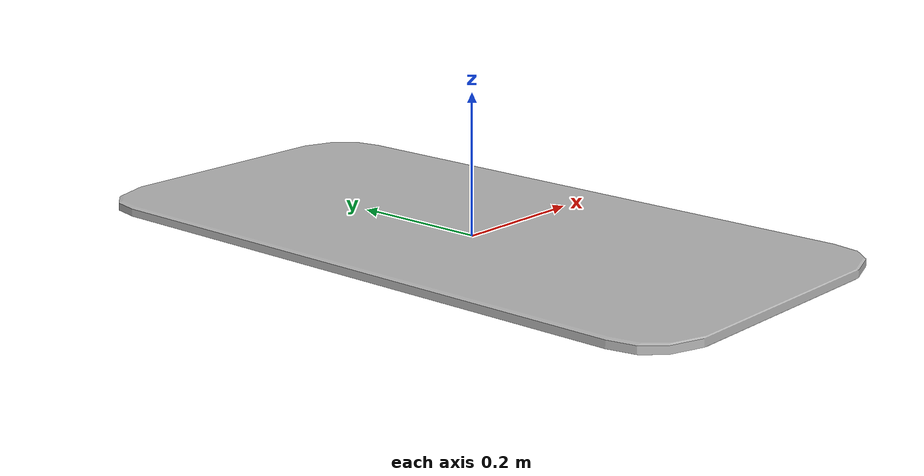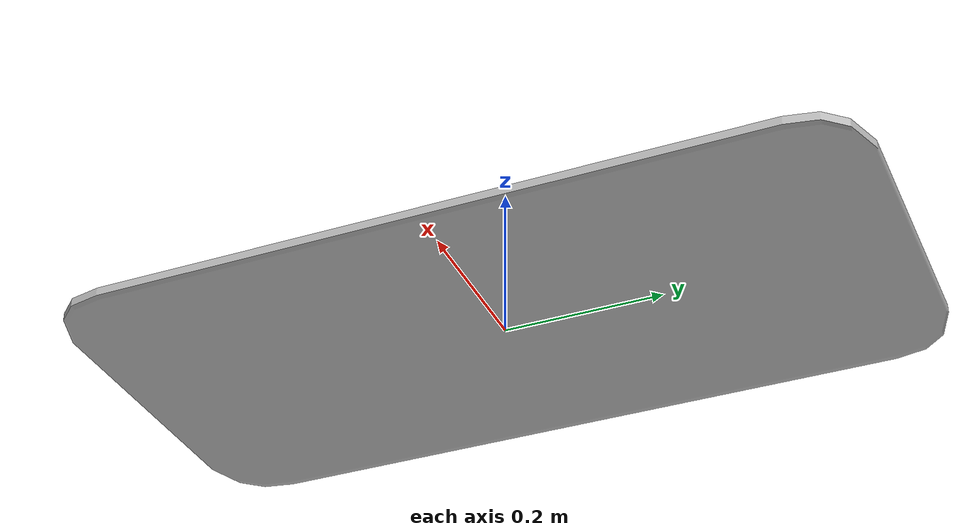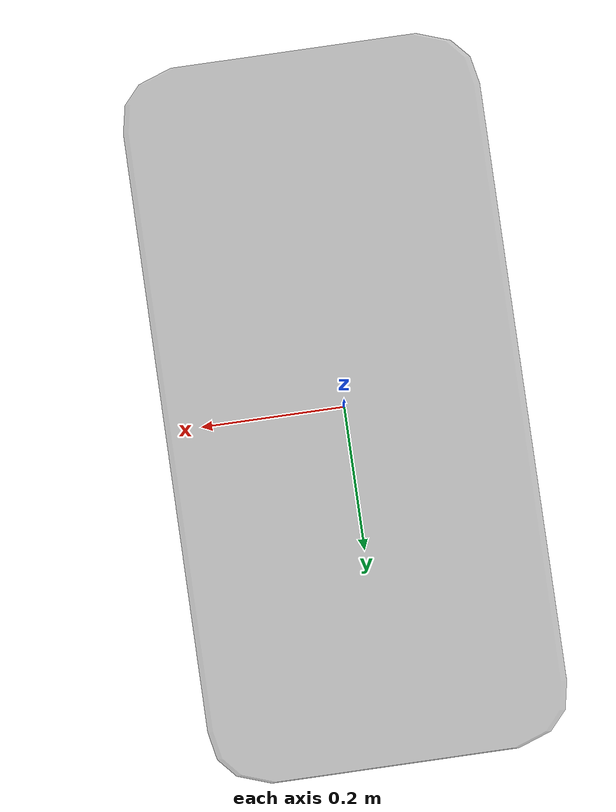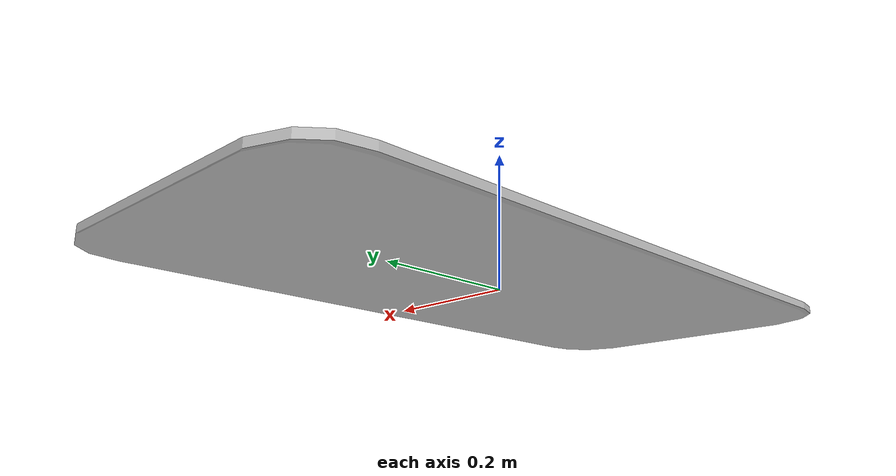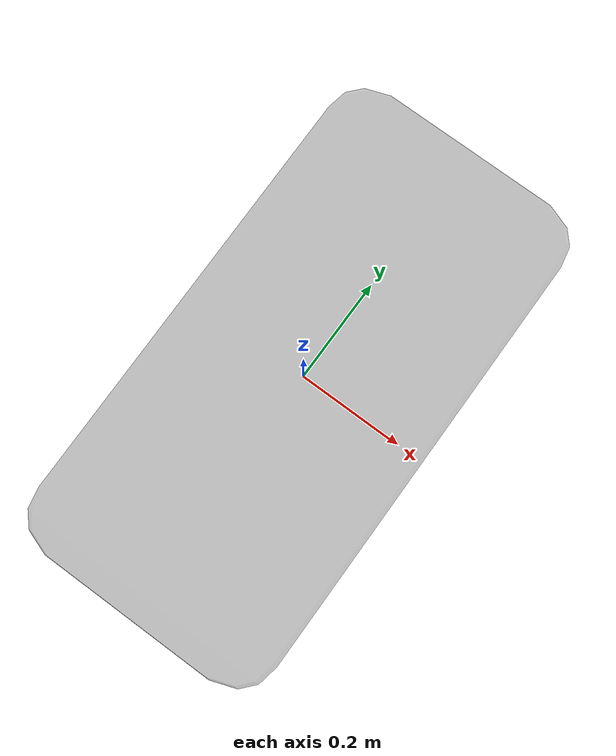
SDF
<?xml version='1.0'?>
<sdf version='1.4'>
  <model name='235'>
    <pose>0 0 0 0 0 0</pose>
    <static>true</static>
    <link name='link'>
      <collision name='collision'>
        <pose>0 0 0 0 0 0</pose>
        <geometry>
          <box>
            <size>0.5 1 0</size>
          </box>
        </geometry>
      </collision>
      <visual name='visual'>
        <pose>0 0 0 0 0 0</pose>
        <geometry>
          <mesh><uri>model://235/235.dae</uri></mesh>
        </geometry>
      </visual>
    </link>
  </model>
</sdf>
